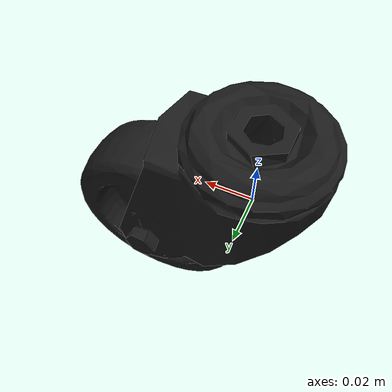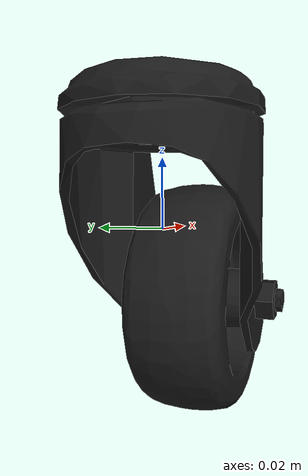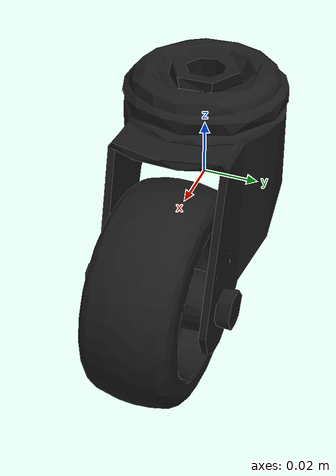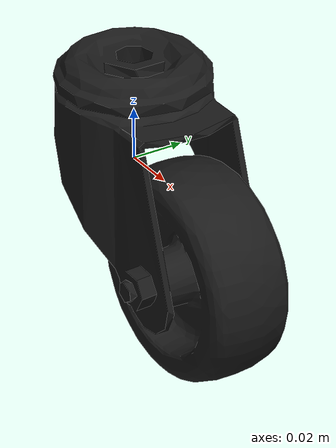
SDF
<?xml version="1.0"?>
<sdf version='1.6'>
<model name='CLOIPorterCaster'>
  <link name='link'>
    <inertial>
      <mass>0.45</mass>
      <inertia>
        <ixx>0.00000833</ixx>
        <ixy>0</ixy>
        <ixz>0</ixz>
        <iyy>0.00000833</iyy>
        <iyz>0</iyz>
        <izz>0.00000833</izz>
      </inertia>
      <pose>0.0 0.0 0.03 -0 0.0 0.0</pose>
    </inertial>

    <gravity>1</gravity>
    <self_collide>0</self_collide>
    <kinematic>0</kinematic>
    <enable_wind>0</enable_wind>

    <visual name='visual'>
      <geometry>
        <mesh>
          <uri>model://CLOi_porter_caster/meshes/caster_hinge.stl</uri>
        </mesh>
      </geometry>
      <material>
        <lighting>1</lighting>
        <ambient>1.0 1.0 1.0 1</ambient>
        <diffuse>0.1 0.1 0.1 1</diffuse>
        <specular>0.2 0.2 0.2 1</specular>
        <emissive>0.01 0.01 0.01 1</emissive>
      </material>
      <cast_shadows>0</cast_shadows>
      <transparency>0</transparency>
    </visual>

    <collision name='collision_caster_wheel'>
      <max_contacts>0</max_contacts>
      <geometry>
        <mesh>
          <uri>model://CLOi_porter_caster/meshes/caster_hinge_collision.stl</uri>
        </mesh>
      </geometry>
      <surface>
        <friction>
          <ode>
            <mu>0.0</mu>
            <mu2>0.0</mu2>
            <fdir1>0 0 1</fdir1>
            <slip1>0.1</slip1>
            <slip2>0.1</slip2>
          </ode>
        </friction>
      </surface>
    </collision>
  </link>

  <link name="link_caster_wheel">
    <pose>0.04 0 -0.026 1.5708 0 0</pose>
    <inertial>
      <mass>0.45</mass>
      <inertia>
        <ixx>0.00032067</ixx>
        <ixy>0</ixy>
        <ixz>0</ixz>
        <iyy>0.00032067</iyy>
        <iyz>0</iyz>
        <izz>0.00036100</izz>
      </inertia>
    </inertial>

    <gravity>1</gravity>
    <visual name='visual'>
      <geometry>
        <mesh>
          <uri>model://CLOi_porter_caster/meshes/caster_wheel.stl</uri>
        </mesh>
      </geometry>
      <material>
        <lighting>1</lighting>
        <ambient>0.95 0.9 0.92 1</ambient>
        <diffuse>0.1 0.1 0.1 1</diffuse>
        <specular>0.2 0.2 0.2 1</specular>
        <emissive>0.01 0.01 0.01 1</emissive>
      </material>
      <cast_shadows>0</cast_shadows>
      <transparency>0</transparency>
    </visual>

    <collision name='collision_caster_wheel'>
      <max_contacts>2</max_contacts>
      <geometry>
        <cylinder>
          <radius>0.04</radius>
          <length>0.03</length>
        </cylinder>
      </geometry>
      <surface>
        <friction>
          <ode>
            <mu>0.05</mu>
            <fdir1>0 0 1</fdir1>
            <slip1>0.1</slip1>
            <slip2>0.1</slip2>
          </ode>
        </friction>
        <contact>
          <poissons_ratio>0.40</poissons_ratio>
          <elastic_modulus>0.40</elastic_modulus>
        </contact>
        <bounce>
          <restitution_coefficient>1</restitution_coefficient>
          <threshold>100000</threshold>
        </bounce>
      </surface>
    </collision>
  </link>
  <joint name='link_CLOi_porter_caster_wheel_joint' type='revolute'>
    <parent>link</parent>
    <child>link_caster_wheel</child>
    <axis>
      <xyz>0 0 1</xyz>
      <dynamics>
        <friction>0.005</friction>
      </dynamics>
    </axis>
  </joint>
</model>
</sdf>
